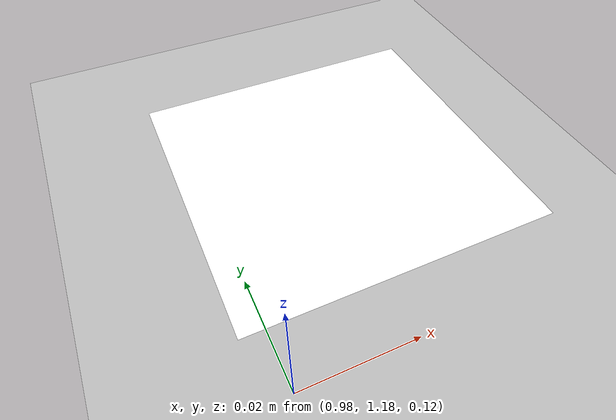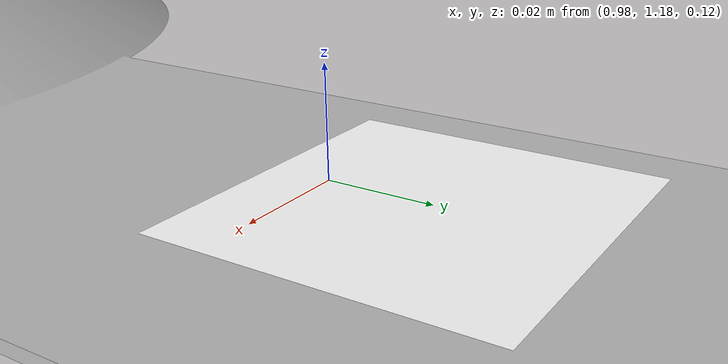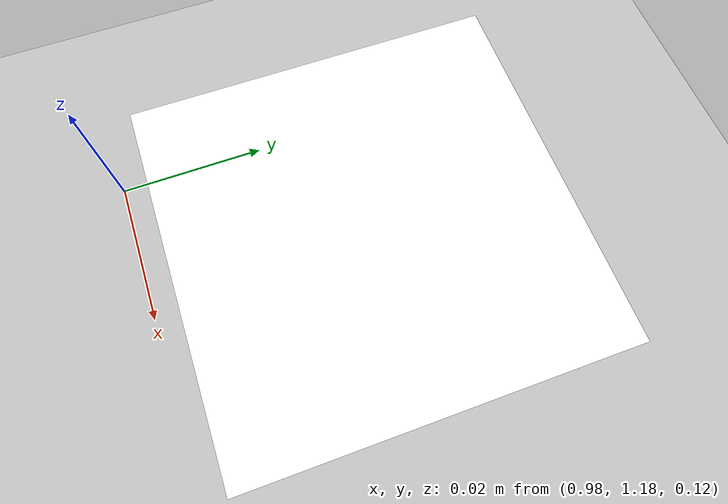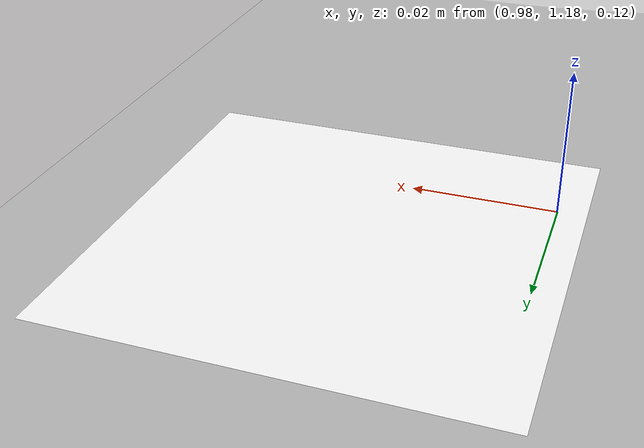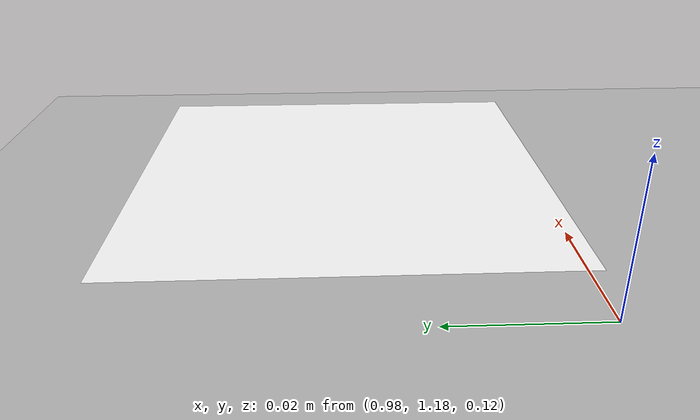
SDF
<?xml version="1.0" ?>
<sdf version="1.5">
  <world name="map">
    <!-- A global light source -->
    <include>
      <uri>model://sun</uri>
    </include>
    <!-- A ground plane -->
    <include>
      <uri>model://ground_plane</uri>
    </include>

    <gui fullscreen='0'>
      <camera name='user_camera'>
        <pose>2.24178 -2.14953 1.44785 0 0.419643 2.29219</pose>
        <view_controller>orbit</view_controller>
        <projection_type>perspective</projection_type>
      </camera>
    </gui>
    <!-- Fix the light conditions -->
    <scene>
      <ambient>0.0 0.0 0.0 1.0</ambient>
      <shadows>0</shadows>
    </scene>

    <physics name='default_physics' default='0' type='ode'>
      <gravity>0 0 -9.8066</gravity>
      <ode>
        <solver>
          <type>quick</type>
          <iters>10</iters>
          <sor>1.3</sor>
          <use_dynamic_moi_rescaling>0</use_dynamic_moi_rescaling>
        </solver>
        <constraints>
          <cfm>0</cfm>
          <erp>0.2</erp>
          <contact_max_correcting_vel>100</contact_max_correcting_vel>
          <contact_surface_layer>0.001</contact_surface_layer>
        </constraints>
      </ode>
      <max_step_size>0.004</max_step_size>
      <real_time_factor>1</real_time_factor>
      <real_time_update_rate>250</real_time_update_rate>
      <magnetic_field>6.0e-6 2.3e-5 -4.2e-5</magnetic_field>
    </physics>

    <!-- Quick Connector -->
        <model name="QuickConnectBase">
        <pose>1 1 0 0 0 0</pose>

        <static>false</static>
        <link name="base_link">
            <inertial>
                <mass>25.0</mass>
                <inertia>
                <ixx>1</ixx>
                <ixy>0</ixy>
                <ixz>0</ixz>
                <iyy>1</iyy>
                <iyz>0</iyz>
                <izz>1</izz>
                </inertia>
            </inertial>

            <collision name='collision'>
                <pose>0 0 0.125 0 0 0</pose>
                <geometry>
                <mesh>
                    <scale>1 1 1</scale>
                    <uri>model://quick_connect_base/meshes/base.dae</uri>
                </mesh>

                </geometry>
                <surface>
                <contact>
                    <ode>
                    <min_depth>0.001</min_depth>
                    <max_vel>0</max_vel>
                    </ode>
                </contact>
                <friction>
                    <ode/>
                </friction>
                </surface>
            </collision>
            <visual name='visual'>
                <pose>0 0 0.125 0 0 0</pose>
                <geometry>
                <mesh>
                    <scale>1 1 1</scale>
                    <uri>model://quick_connect_base/meshes/base.dae</uri>
                </mesh>
                </geometry>
            </visual>
            <gravity>1</gravity>
        </link>
        <!-- Aruco marker on base -->
        <link name="aruco_link">
        <pose>0 0.21 0.13 0 0 0</pose>
        <visual name='visual'>
          <cast_shadows>0</cast_shadows>
          <geometry>
            <box>
              <size>0.05 0.05 0</size>
            </box>
          </geometry>
          <material>
            <script>
              <uri>model://aruco_gazebo/aruco_visual_marker_0/materials/scripts</uri>
              <uri>model://aruco_gazebo/aruco_visual_marker_0/materials/textures</uri>
              <name>ArucoVisualMarker0/Marker</name>
            </script>
            <ambient>1 1 1 1</ambient>
            <diffuse>1 1 1 1</diffuse>
            <specular>0 0 0 1</specular>
            <emissive>1 1 1 0</emissive>
          </material>
        </visual>
        <self_collide>0</self_collide>
        <enable_wind>0</enable_wind>
        <kinematic>0</kinematic>
        </link>
        <joint name='base_pad_joint' type='fixed'>
          <child>aruco_link</child>
          <parent>base_link</parent>
          <axis>
            <xyz>0 0 0</xyz>
            <limit>
              <lower>0</lower>
              <upper>0</upper>
              <effort>0</effort>
              <velocity>0</velocity>
            </limit>
            <dynamics>
              <spring_reference>0</spring_reference>
              <spring_stiffness>0</spring_stiffness>
            </dynamics>
            <use_parent_model_frame>1</use_parent_model_frame>
          </axis>
        </joint>
    </model>
  </world>
</sdf>
